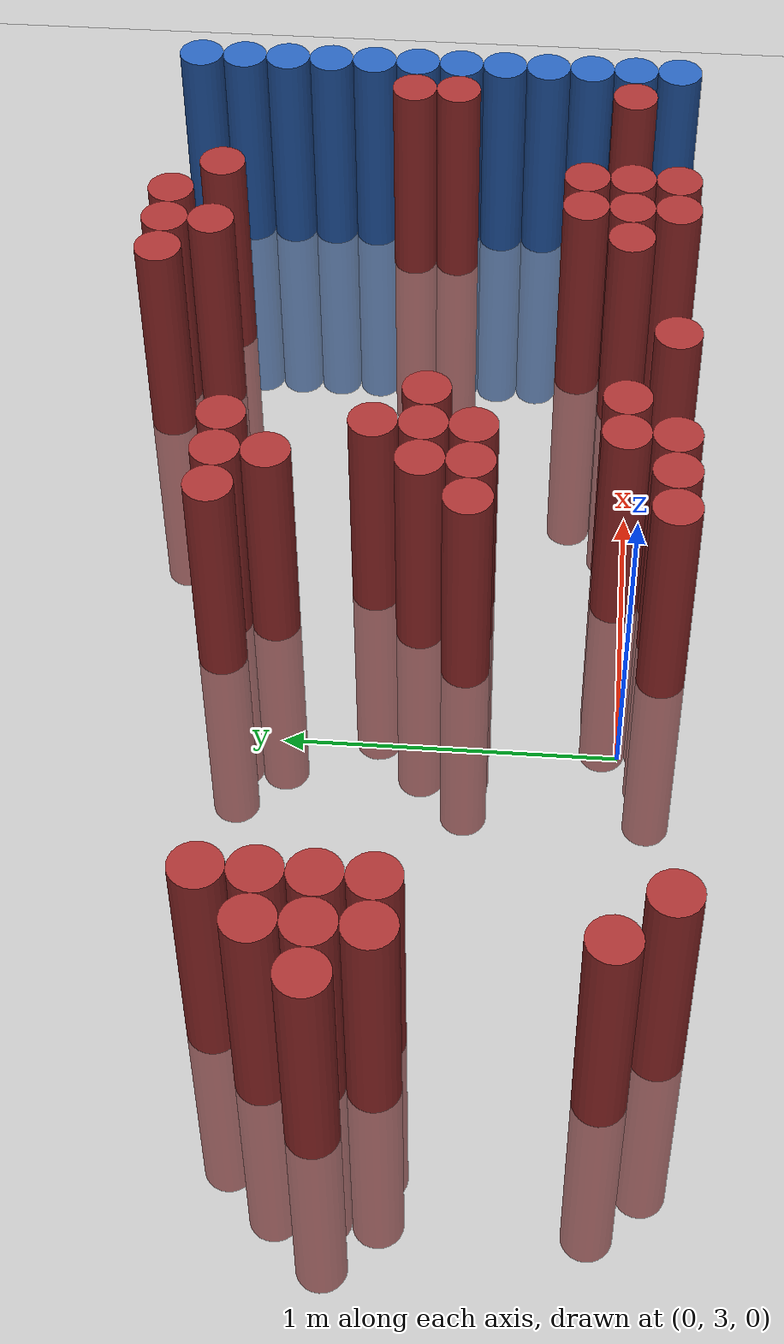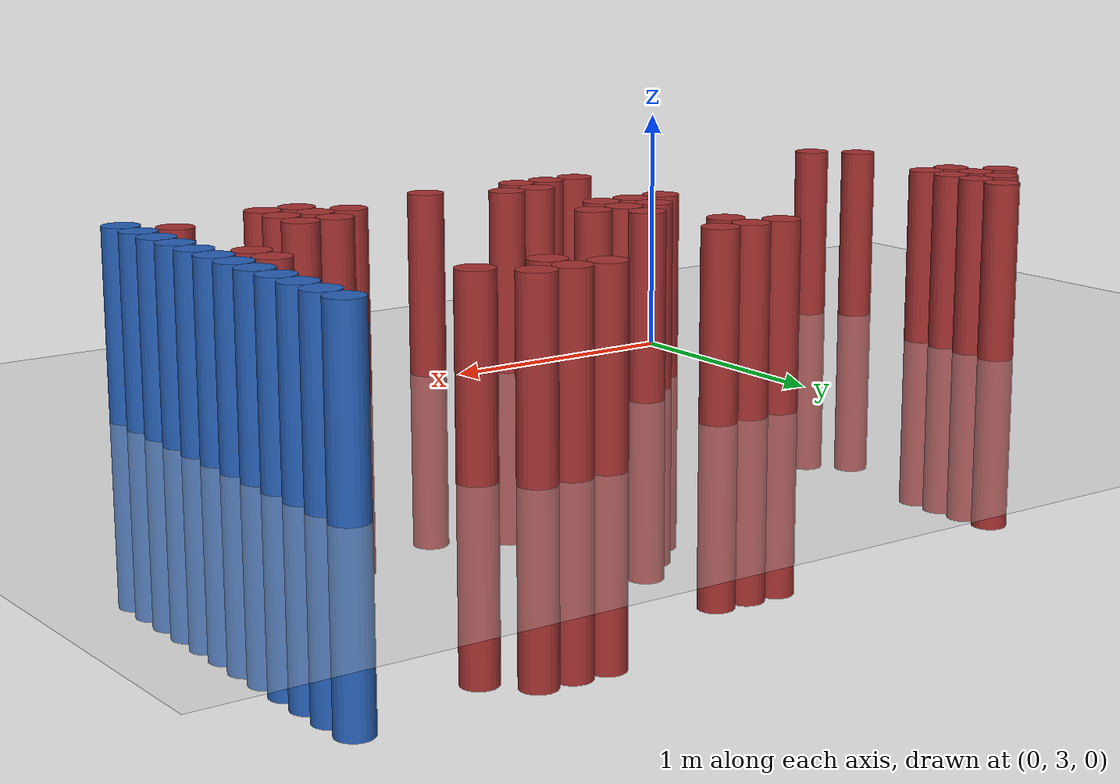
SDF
<sdf version="1.6">
 <world name="default">
  <model name="ground_plane">
   <static>1</static>
   <link name="link">
    <collision name="collision">
     <geometry><plane><normal>0 0 1</normal><size>100 100</size></plane></geometry>
     <surface><friction><ode><mu>100</mu><mu2>50</mu2></ode></friction></surface>
    </collision>
    <visual name="visual">
     <cast_shadows>0</cast_shadows>
     <geometry><plane><normal>0 0 1</normal><size>100 100</size></plane></geometry>
     <material>
      <script><uri>file://media/materials/scripts/gazebo.material</uri><name>Gazebo/Grey</name></script>
     </material>
    </visual>
   </link>
  </model>
  <model name="unit_cylinder_153">
   <static>1</static>
   <pose>-1.325000 3.775000 0.000000 0.000000 0.000000 0.000000</pose>
   <link name="link">
    <inertial>
     <mass>1</mass>
     <inertia><ixx>0.145833</ixx><ixy>0</ixy><ixz>0</ixz><iyy>0.145833</iyy><iyz>0</iyz><izz>0.125</izz></inertia>
    </inertial>
    <collision name="collision">
     <geometry><cylinder><radius>0.075000</radius><length>1.5</length></cylinder></geometry>
    </collision>
    <visual name="visual">
     <geometry><cylinder><radius>0.075000</radius><length>1.5</length></cylinder></geometry>
     <material>
      <ambient>0.648000 0.192000 0.192000 1</ambient>
      <diffuse>0.648000 0.192000 0.192000 1</diffuse>
     </material>
     <material>
      <script><name>Gazebo/Grey</name><uri>file://media/materials/scripts/gazebo.material</uri></script>
     </material>
    </visual>
   </link>
  </model>
  <model name="unit_cylinder_155">
   <static>1</static>
   <pose>-1.175000 3.025000 0.000000 0.000000 0.000000 0.000000</pose>
   <link name="link">
    <inertial>
     <mass>1</mass>
     <inertia><ixx>0.145833</ixx><ixy>0</ixy><ixz>0</ixz><iyy>0.145833</iyy><iyz>0</iyz><izz>0.125</izz></inertia>
    </inertial>
    <collision name="collision">
     <geometry><cylinder><radius>0.075000</radius><length>1.5</length></cylinder></geometry>
    </collision>
    <visual name="visual">
     <geometry><cylinder><radius>0.075000</radius><length>1.5</length></cylinder></geometry>
     <material>
      <ambient>0.648000 0.192000 0.192000 1</ambient>
      <diffuse>0.648000 0.192000 0.192000 1</diffuse>
     </material>
     <material>
      <script><name>Gazebo/Grey</name><uri>file://media/materials/scripts/gazebo.material</uri></script>
     </material>
    </visual>
   </link>
  </model>
  <model name="unit_cylinder_156">
   <static>1</static>
   <pose>-1.175000 3.625000 0.000000 0.000000 0.000000 0.000000</pose>
   <link name="link">
    <inertial>
     <mass>1</mass>
     <inertia><ixx>0.145833</ixx><ixy>0</ixy><ixz>0</ixz><iyy>0.145833</iyy><iyz>0</iyz><izz>0.125</izz></inertia>
    </inertial>
    <collision name="collision">
     <geometry><cylinder><radius>0.075000</radius><length>1.5</length></cylinder></geometry>
    </collision>
    <visual name="visual">
     <geometry><cylinder><radius>0.075000</radius><length>1.5</length></cylinder></geometry>
     <material>
      <ambient>0.648000 0.192000 0.192000 1</ambient>
      <diffuse>0.648000 0.192000 0.192000 1</diffuse>
     </material>
     <material>
      <script><name>Gazebo/Grey</name><uri>file://media/materials/scripts/gazebo.material</uri></script>
     </material>
    </visual>
   </link>
  </model>
  <model name="unit_cylinder_157">
   <static>1</static>
   <pose>-1.175000 3.775000 0.000000 0.000000 0.000000 0.000000</pose>
   <link name="link">
    <inertial>
     <mass>1</mass>
     <inertia><ixx>0.145833</ixx><ixy>0</ixy><ixz>0</ixz><iyy>0.145833</iyy><iyz>0</iyz><izz>0.125</izz></inertia>
    </inertial>
    <collision name="collision">
     <geometry><cylinder><radius>0.075000</radius><length>1.5</length></cylinder></geometry>
    </collision>
    <visual name="visual">
     <geometry><cylinder><radius>0.075000</radius><length>1.5</length></cylinder></geometry>
     <material>
      <ambient>0.648000 0.192000 0.192000 1</ambient>
      <diffuse>0.648000 0.192000 0.192000 1</diffuse>
     </material>
     <material>
      <script><name>Gazebo/Grey</name><uri>file://media/materials/scripts/gazebo.material</uri></script>
     </material>
    </visual>
   </link>
  </model>
  <model name="unit_cylinder_158">
   <static>1</static>
   <pose>-1.175000 3.925000 0.000000 0.000000 0.000000 0.000000</pose>
   <link name="link">
    <inertial>
     <mass>1</mass>
     <inertia><ixx>0.145833</ixx><ixy>0</ixy><ixz>0</ixz><iyy>0.145833</iyy><iyz>0</iyz><izz>0.125</izz></inertia>
    </inertial>
    <collision name="collision">
     <geometry><cylinder><radius>0.075000</radius><length>1.5</length></cylinder></geometry>
    </collision>
    <visual name="visual">
     <geometry><cylinder><radius>0.075000</radius><length>1.5</length></cylinder></geometry>
     <material>
      <ambient>0.648000 0.192000 0.192000 1</ambient>
      <diffuse>0.648000 0.192000 0.192000 1</diffuse>
     </material>
     <material>
      <script><name>Gazebo/Grey</name><uri>file://media/materials/scripts/gazebo.material</uri></script>
     </material>
    </visual>
   </link>
  </model>
  <model name="unit_cylinder_159">
   <static>1</static>
   <pose>-1.025000 2.875000 0.000000 0.000000 0.000000 0.000000</pose>
   <link name="link">
    <inertial>
     <mass>1</mass>
     <inertia><ixx>0.145833</ixx><ixy>0</ixy><ixz>0</ixz><iyy>0.145833</iyy><iyz>0</iyz><izz>0.125</izz></inertia>
    </inertial>
    <collision name="collision">
     <geometry><cylinder><radius>0.075000</radius><length>1.5</length></cylinder></geometry>
    </collision>
    <visual name="visual">
     <geometry><cylinder><radius>0.075000</radius><length>1.5</length></cylinder></geometry>
     <material>
      <ambient>0.648000 0.192000 0.192000 1</ambient>
      <diffuse>0.648000 0.192000 0.192000 1</diffuse>
     </material>
     <material>
      <script><name>Gazebo/Grey</name><uri>file://media/materials/scripts/gazebo.material</uri></script>
     </material>
    </visual>
   </link>
  </model>
  <model name="unit_cylinder_160">
   <static>1</static>
   <pose>-1.025000 3.625000 0.000000 0.000000 0.000000 0.000000</pose>
   <link name="link">
    <inertial>
     <mass>1</mass>
     <inertia><ixx>0.145833</ixx><ixy>0</ixy><ixz>0</ixz><iyy>0.145833</iyy><iyz>0</iyz><izz>0.125</izz></inertia>
    </inertial>
    <collision name="collision">
     <geometry><cylinder><radius>0.075000</radius><length>1.5</length></cylinder></geometry>
    </collision>
    <visual name="visual">
     <geometry><cylinder><radius>0.075000</radius><length>1.5</length></cylinder></geometry>
     <material>
      <ambient>0.648000 0.192000 0.192000 1</ambient>
      <diffuse>0.648000 0.192000 0.192000 1</diffuse>
     </material>
     <material>
      <script><name>Gazebo/Grey</name><uri>file://media/materials/scripts/gazebo.material</uri></script>
     </material>
    </visual>
   </link>
  </model>
  <model name="unit_cylinder_161">
   <static>1</static>
   <pose>-1.025000 3.775000 0.000000 0.000000 0.000000 0.000000</pose>
   <link name="link">
    <inertial>
     <mass>1</mass>
     <inertia><ixx>0.145833</ixx><ixy>0</ixy><ixz>0</ixz><iyy>0.145833</iyy><iyz>0</iyz><izz>0.125</izz></inertia>
    </inertial>
    <collision name="collision">
     <geometry><cylinder><radius>0.075000</radius><length>1.5</length></cylinder></geometry>
    </collision>
    <visual name="visual">
     <geometry><cylinder><radius>0.075000</radius><length>1.5</length></cylinder></geometry>
     <material>
      <ambient>0.648000 0.192000 0.192000 1</ambient>
      <diffuse>0.648000 0.192000 0.192000 1</diffuse>
     </material>
     <material>
      <script><name>Gazebo/Grey</name><uri>file://media/materials/scripts/gazebo.material</uri></script>
     </material>
    </visual>
   </link>
  </model>
  <model name="unit_cylinder_162">
   <static>1</static>
   <pose>-1.025000 3.925000 0.000000 0.000000 0.000000 0.000000</pose>
   <link name="link">
    <inertial>
     <mass>1</mass>
     <inertia><ixx>0.145833</ixx><ixy>0</ixy><ixz>0</ixz><iyy>0.145833</iyy><iyz>0</iyz><izz>0.125</izz></inertia>
    </inertial>
    <collision name="collision">
     <geometry><cylinder><radius>0.075000</radius><length>1.5</length></cylinder></geometry>
    </collision>
    <visual name="visual">
     <geometry><cylinder><radius>0.075000</radius><length>1.5</length></cylinder></geometry>
     <material>
      <ambient>0.648000 0.192000 0.192000 1</ambient>
      <diffuse>0.648000 0.192000 0.192000 1</diffuse>
     </material>
     <material>
      <script><name>Gazebo/Grey</name><uri>file://media/materials/scripts/gazebo.material</uri></script>
     </material>
    </visual>
   </link>
  </model>
  <model name="unit_cylinder_163">
   <static>1</static>
   <pose>-1.025000 4.075000 0.000000 0.000000 0.000000 0.000000</pose>
   <link name="link">
    <inertial>
     <mass>1</mass>
     <inertia><ixx>0.145833</ixx><ixy>0</ixy><ixz>0</ixz><iyy>0.145833</iyy><iyz>0</iyz><izz>0.125</izz></inertia>
    </inertial>
    <collision name="collision">
     <geometry><cylinder><radius>0.075000</radius><length>1.5</length></cylinder></geometry>
    </collision>
    <visual name="visual">
     <geometry><cylinder><radius>0.075000</radius><length>1.5</length></cylinder></geometry>
     <material>
      <ambient>0.648000 0.192000 0.192000 1</ambient>
      <diffuse>0.648000 0.192000 0.192000 1</diffuse>
     </material>
     <material>
      <script><name>Gazebo/Grey</name><uri>file://media/materials/scripts/gazebo.material</uri></script>
     </material>
    </visual>
   </link>
  </model>
  <model name="unit_cylinder_182">
   <static>1</static>
   <pose>0.325000 2.875000 0.000000 0.000000 0.000000 0.000000</pose>
   <link name="link">
    <inertial>
     <mass>1</mass>
     <inertia><ixx>0.145833</ixx><ixy>0</ixy><ixz>0</ixz><iyy>0.145833</iyy><iyz>0</iyz><izz>0.125</izz></inertia>
    </inertial>
    <collision name="collision">
     <geometry><cylinder><radius>0.075000</radius><length>1.5</length></cylinder></geometry>
    </collision>
    <visual name="visual">
     <geometry><cylinder><radius>0.075000</radius><length>1.5</length></cylinder></geometry>
     <material>
      <ambient>0.648000 0.192000 0.192000 1</ambient>
      <diffuse>0.648000 0.192000 0.192000 1</diffuse>
     </material>
     <material>
      <script><name>Gazebo/Grey</name><uri>file://media/materials/scripts/gazebo.material</uri></script>
     </material>
    </visual>
   </link>
  </model>
  <model name="unit_cylinder_183">
   <static>1</static>
   <pose>0.325000 3.475000 0.000000 0.000000 0.000000 0.000000</pose>
   <link name="link">
    <inertial>
     <mass>1</mass>
     <inertia><ixx>0.145833</ixx><ixy>0</ixy><ixz>0</ixz><iyy>0.145833</iyy><iyz>0</iyz><izz>0.125</izz></inertia>
    </inertial>
    <collision name="collision">
     <geometry><cylinder><radius>0.075000</radius><length>1.5</length></cylinder></geometry>
    </collision>
    <visual name="visual">
     <geometry><cylinder><radius>0.075000</radius><length>1.5</length></cylinder></geometry>
     <material>
      <ambient>0.648000 0.192000 0.192000 1</ambient>
      <diffuse>0.648000 0.192000 0.192000 1</diffuse>
     </material>
     <material>
      <script><name>Gazebo/Grey</name><uri>file://media/materials/scripts/gazebo.material</uri></script>
     </material>
    </visual>
   </link>
  </model>
  <model name="unit_cylinder_184">
   <static>1</static>
   <pose>0.325000 4.225000 0.000000 0.000000 0.000000 0.000000</pose>
   <link name="link">
    <inertial>
     <mass>1</mass>
     <inertia><ixx>0.145833</ixx><ixy>0</ixy><ixz>0</ixz><iyy>0.145833</iyy><iyz>0</iyz><izz>0.125</izz></inertia>
    </inertial>
    <collision name="collision">
     <geometry><cylinder><radius>0.075000</radius><length>1.5</length></cylinder></geometry>
    </collision>
    <visual name="visual">
     <geometry><cylinder><radius>0.075000</radius><length>1.5</length></cylinder></geometry>
     <material>
      <ambient>0.648000 0.192000 0.192000 1</ambient>
      <diffuse>0.648000 0.192000 0.192000 1</diffuse>
     </material>
     <material>
      <script><name>Gazebo/Grey</name><uri>file://media/materials/scripts/gazebo.material</uri></script>
     </material>
    </visual>
   </link>
  </model>
  <model name="unit_cylinder_185">
   <static>1</static>
   <pose>0.475000 2.875000 0.000000 0.000000 0.000000 0.000000</pose>
   <link name="link">
    <inertial>
     <mass>1</mass>
     <inertia><ixx>0.145833</ixx><ixy>0</ixy><ixz>0</ixz><iyy>0.145833</iyy><iyz>0</iyz><izz>0.125</izz></inertia>
    </inertial>
    <collision name="collision">
     <geometry><cylinder><radius>0.075000</radius><length>1.5</length></cylinder></geometry>
    </collision>
    <visual name="visual">
     <geometry><cylinder><radius>0.075000</radius><length>1.5</length></cylinder></geometry>
     <material>
      <ambient>0.648000 0.192000 0.192000 1</ambient>
      <diffuse>0.648000 0.192000 0.192000 1</diffuse>
     </material>
     <material>
      <script><name>Gazebo/Grey</name><uri>file://media/materials/scripts/gazebo.material</uri></script>
     </material>
    </visual>
   </link>
  </model>
  <model name="unit_cylinder_186">
   <static>1</static>
   <pose>0.475000 3.475000 0.000000 0.000000 0.000000 0.000000</pose>
   <link name="link">
    <inertial>
     <mass>1</mass>
     <inertia><ixx>0.145833</ixx><ixy>0</ixy><ixz>0</ixz><iyy>0.145833</iyy><iyz>0</iyz><izz>0.125</izz></inertia>
    </inertial>
    <collision name="collision">
     <geometry><cylinder><radius>0.075000</radius><length>1.5</length></cylinder></geometry>
    </collision>
    <visual name="visual">
     <geometry><cylinder><radius>0.075000</radius><length>1.5</length></cylinder></geometry>
     <material>
      <ambient>0.648000 0.192000 0.192000 1</ambient>
      <diffuse>0.648000 0.192000 0.192000 1</diffuse>
     </material>
     <material>
      <script><name>Gazebo/Grey</name><uri>file://media/materials/scripts/gazebo.material</uri></script>
     </material>
    </visual>
   </link>
  </model>
  <model name="unit_cylinder_187">
   <static>1</static>
   <pose>0.475000 3.625000 0.000000 0.000000 0.000000 0.000000</pose>
   <link name="link">
    <inertial>
     <mass>1</mass>
     <inertia><ixx>0.145833</ixx><ixy>0</ixy><ixz>0</ixz><iyy>0.145833</iyy><iyz>0</iyz><izz>0.125</izz></inertia>
    </inertial>
    <collision name="collision">
     <geometry><cylinder><radius>0.075000</radius><length>1.5</length></cylinder></geometry>
    </collision>
    <visual name="visual">
     <geometry><cylinder><radius>0.075000</radius><length>1.5</length></cylinder></geometry>
     <material>
      <ambient>0.648000 0.192000 0.192000 1</ambient>
      <diffuse>0.648000 0.192000 0.192000 1</diffuse>
     </material>
     <material>
      <script><name>Gazebo/Grey</name><uri>file://media/materials/scripts/gazebo.material</uri></script>
     </material>
    </visual>
   </link>
  </model>
  <model name="unit_cylinder_188">
   <static>1</static>
   <pose>0.475000 4.075000 0.000000 0.000000 0.000000 0.000000</pose>
   <link name="link">
    <inertial>
     <mass>1</mass>
     <inertia><ixx>0.145833</ixx><ixy>0</ixy><ixz>0</ixz><iyy>0.145833</iyy><iyz>0</iyz><izz>0.125</izz></inertia>
    </inertial>
    <collision name="collision">
     <geometry><cylinder><radius>0.075000</radius><length>1.5</length></cylinder></geometry>
    </collision>
    <visual name="visual">
     <geometry><cylinder><radius>0.075000</radius><length>1.5</length></cylinder></geometry>
     <material>
      <ambient>0.648000 0.192000 0.192000 1</ambient>
      <diffuse>0.648000 0.192000 0.192000 1</diffuse>
     </material>
     <material>
      <script><name>Gazebo/Grey</name><uri>file://media/materials/scripts/gazebo.material</uri></script>
     </material>
    </visual>
   </link>
  </model>
  <model name="unit_cylinder_189">
   <static>1</static>
   <pose>0.475000 4.225000 0.000000 0.000000 0.000000 0.000000</pose>
   <link name="link">
    <inertial>
     <mass>1</mass>
     <inertia><ixx>0.145833</ixx><ixy>0</ixy><ixz>0</ixz><iyy>0.145833</iyy><iyz>0</iyz><izz>0.125</izz></inertia>
    </inertial>
    <collision name="collision">
     <geometry><cylinder><radius>0.075000</radius><length>1.5</length></cylinder></geometry>
    </collision>
    <visual name="visual">
     <geometry><cylinder><radius>0.075000</radius><length>1.5</length></cylinder></geometry>
     <material>
      <ambient>0.648000 0.192000 0.192000 1</ambient>
      <diffuse>0.648000 0.192000 0.192000 1</diffuse>
     </material>
     <material>
      <script><name>Gazebo/Grey</name><uri>file://media/materials/scripts/gazebo.material</uri></script>
     </material>
    </visual>
   </link>
  </model>
  <model name="unit_cylinder_190">
   <static>1</static>
   <pose>0.625000 2.875000 0.000000 0.000000 0.000000 0.000000</pose>
   <link name="link">
    <inertial>
     <mass>1</mass>
     <inertia><ixx>0.145833</ixx><ixy>0</ixy><ixz>0</ixz><iyy>0.145833</iyy><iyz>0</iyz><izz>0.125</izz></inertia>
    </inertial>
    <collision name="collision">
     <geometry><cylinder><radius>0.075000</radius><length>1.5</length></cylinder></geometry>
    </collision>
    <visual name="visual">
     <geometry><cylinder><radius>0.075000</radius><length>1.5</length></cylinder></geometry>
     <material>
      <ambient>0.648000 0.192000 0.192000 1</ambient>
      <diffuse>0.648000 0.192000 0.192000 1</diffuse>
     </material>
     <material>
      <script><name>Gazebo/Grey</name><uri>file://media/materials/scripts/gazebo.material</uri></script>
     </material>
    </visual>
   </link>
  </model>
  <model name="unit_cylinder_191">
   <static>1</static>
   <pose>0.625000 3.025000 0.000000 0.000000 0.000000 0.000000</pose>
   <link name="link">
    <inertial>
     <mass>1</mass>
     <inertia><ixx>0.145833</ixx><ixy>0</ixy><ixz>0</ixz><iyy>0.145833</iyy><iyz>0</iyz><izz>0.125</izz></inertia>
    </inertial>
    <collision name="collision">
     <geometry><cylinder><radius>0.075000</radius><length>1.5</length></cylinder></geometry>
    </collision>
    <visual name="visual">
     <geometry><cylinder><radius>0.075000</radius><length>1.5</length></cylinder></geometry>
     <material>
      <ambient>0.648000 0.192000 0.192000 1</ambient>
      <diffuse>0.648000 0.192000 0.192000 1</diffuse>
     </material>
     <material>
      <script><name>Gazebo/Grey</name><uri>file://media/materials/scripts/gazebo.material</uri></script>
     </material>
    </visual>
   </link>
  </model>
  <model name="unit_cylinder_192">
   <static>1</static>
   <pose>0.625000 3.475000 0.000000 0.000000 0.000000 0.000000</pose>
   <link name="link">
    <inertial>
     <mass>1</mass>
     <inertia><ixx>0.145833</ixx><ixy>0</ixy><ixz>0</ixz><iyy>0.145833</iyy><iyz>0</iyz><izz>0.125</izz></inertia>
    </inertial>
    <collision name="collision">
     <geometry><cylinder><radius>0.075000</radius><length>1.5</length></cylinder></geometry>
    </collision>
    <visual name="visual">
     <geometry><cylinder><radius>0.075000</radius><length>1.5</length></cylinder></geometry>
     <material>
      <ambient>0.648000 0.192000 0.192000 1</ambient>
      <diffuse>0.648000 0.192000 0.192000 1</diffuse>
     </material>
     <material>
      <script><name>Gazebo/Grey</name><uri>file://media/materials/scripts/gazebo.material</uri></script>
     </material>
    </visual>
   </link>
  </model>
  <model name="unit_cylinder_193">
   <static>1</static>
   <pose>0.625000 3.625000 0.000000 0.000000 0.000000 0.000000</pose>
   <link name="link">
    <inertial>
     <mass>1</mass>
     <inertia><ixx>0.145833</ixx><ixy>0</ixy><ixz>0</ixz><iyy>0.145833</iyy><iyz>0</iyz><izz>0.125</izz></inertia>
    </inertial>
    <collision name="collision">
     <geometry><cylinder><radius>0.075000</radius><length>1.5</length></cylinder></geometry>
    </collision>
    <visual name="visual">
     <geometry><cylinder><radius>0.075000</radius><length>1.5</length></cylinder></geometry>
     <material>
      <ambient>0.648000 0.192000 0.192000 1</ambient>
      <diffuse>0.648000 0.192000 0.192000 1</diffuse>
     </material>
     <material>
      <script><name>Gazebo/Grey</name><uri>file://media/materials/scripts/gazebo.material</uri></script>
     </material>
    </visual>
   </link>
  </model>
  <model name="unit_cylinder_194">
   <static>1</static>
   <pose>0.625000 3.775000 0.000000 0.000000 0.000000 0.000000</pose>
   <link name="link">
    <inertial>
     <mass>1</mass>
     <inertia><ixx>0.145833</ixx><ixy>0</ixy><ixz>0</ixz><iyy>0.145833</iyy><iyz>0</iyz><izz>0.125</izz></inertia>
    </inertial>
    <collision name="collision">
     <geometry><cylinder><radius>0.075000</radius><length>1.5</length></cylinder></geometry>
    </collision>
    <visual name="visual">
     <geometry><cylinder><radius>0.075000</radius><length>1.5</length></cylinder></geometry>
     <material>
      <ambient>0.648000 0.192000 0.192000 1</ambient>
      <diffuse>0.648000 0.192000 0.192000 1</diffuse>
     </material>
     <material>
      <script><name>Gazebo/Grey</name><uri>file://media/materials/scripts/gazebo.material</uri></script>
     </material>
    </visual>
   </link>
  </model>
  <model name="unit_cylinder_195">
   <static>1</static>
   <pose>0.625000 4.225000 0.000000 0.000000 0.000000 0.000000</pose>
   <link name="link">
    <inertial>
     <mass>1</mass>
     <inertia><ixx>0.145833</ixx><ixy>0</ixy><ixz>0</ixz><iyy>0.145833</iyy><iyz>0</iyz><izz>0.125</izz></inertia>
    </inertial>
    <collision name="collision">
     <geometry><cylinder><radius>0.075000</radius><length>1.5</length></cylinder></geometry>
    </collision>
    <visual name="visual">
     <geometry><cylinder><radius>0.075000</radius><length>1.5</length></cylinder></geometry>
     <material>
      <ambient>0.648000 0.192000 0.192000 1</ambient>
      <diffuse>0.648000 0.192000 0.192000 1</diffuse>
     </material>
     <material>
      <script><name>Gazebo/Grey</name><uri>file://media/materials/scripts/gazebo.material</uri></script>
     </material>
    </visual>
   </link>
  </model>
  <model name="unit_cylinder_196">
   <static>1</static>
   <pose>0.775000 3.025000 0.000000 0.000000 0.000000 0.000000</pose>
   <link name="link">
    <inertial>
     <mass>1</mass>
     <inertia><ixx>0.145833</ixx><ixy>0</ixy><ixz>0</ixz><iyy>0.145833</iyy><iyz>0</iyz><izz>0.125</izz></inertia>
    </inertial>
    <collision name="collision">
     <geometry><cylinder><radius>0.075000</radius><length>1.5</length></cylinder></geometry>
    </collision>
    <visual name="visual">
     <geometry><cylinder><radius>0.075000</radius><length>1.5</length></cylinder></geometry>
     <material>
      <ambient>0.648000 0.192000 0.192000 1</ambient>
      <diffuse>0.648000 0.192000 0.192000 1</diffuse>
     </material>
     <material>
      <script><name>Gazebo/Grey</name><uri>file://media/materials/scripts/gazebo.material</uri></script>
     </material>
    </visual>
   </link>
  </model>
  <model name="unit_cylinder_197">
   <static>1</static>
   <pose>0.775000 3.625000 0.000000 0.000000 0.000000 0.000000</pose>
   <link name="link">
    <inertial>
     <mass>1</mass>
     <inertia><ixx>0.145833</ixx><ixy>0</ixy><ixz>0</ixz><iyy>0.145833</iyy><iyz>0</iyz><izz>0.125</izz></inertia>
    </inertial>
    <collision name="collision">
     <geometry><cylinder><radius>0.075000</radius><length>1.5</length></cylinder></geometry>
    </collision>
    <visual name="visual">
     <geometry><cylinder><radius>0.075000</radius><length>1.5</length></cylinder></geometry>
     <material>
      <ambient>0.648000 0.192000 0.192000 1</ambient>
      <diffuse>0.648000 0.192000 0.192000 1</diffuse>
     </material>
     <material>
      <script><name>Gazebo/Grey</name><uri>file://media/materials/scripts/gazebo.material</uri></script>
     </material>
    </visual>
   </link>
  </model>
  <model name="unit_cylinder_203">
   <static>1</static>
   <pose>1.075000 2.875000 0.000000 0.000000 0.000000 0.000000</pose>
   <link name="link">
    <inertial>
     <mass>1</mass>
     <inertia><ixx>0.145833</ixx><ixy>0</ixy><ixz>0</ixz><iyy>0.145833</iyy><iyz>0</iyz><izz>0.125</izz></inertia>
    </inertial>
    <collision name="collision">
     <geometry><cylinder><radius>0.075000</radius><length>1.5</length></cylinder></geometry>
    </collision>
    <visual name="visual">
     <geometry><cylinder><radius>0.075000</radius><length>1.5</length></cylinder></geometry>
     <material>
      <ambient>0.648000 0.192000 0.192000 1</ambient>
      <diffuse>0.648000 0.192000 0.192000 1</diffuse>
     </material>
     <material>
      <script><name>Gazebo/Grey</name><uri>file://media/materials/scripts/gazebo.material</uri></script>
     </material>
    </visual>
   </link>
  </model>
  <model name="unit_cylinder_210">
   <static>1</static>
   <pose>1.375000 4.525000 0.000000 0.000000 0.000000 0.000000</pose>
   <link name="link">
    <inertial>
     <mass>1</mass>
     <inertia><ixx>0.145833</ixx><ixy>0</ixy><ixz>0</ixz><iyy>0.145833</iyy><iyz>0</iyz><izz>0.125</izz></inertia>
    </inertial>
    <collision name="collision">
     <geometry><cylinder><radius>0.075000</radius><length>1.5</length></cylinder></geometry>
    </collision>
    <visual name="visual">
     <geometry><cylinder><radius>0.075000</radius><length>1.5</length></cylinder></geometry>
     <material>
      <ambient>0.648000 0.192000 0.192000 1</ambient>
      <diffuse>0.648000 0.192000 0.192000 1</diffuse>
     </material>
     <material>
      <script><name>Gazebo/Grey</name><uri>file://media/materials/scripts/gazebo.material</uri></script>
     </material>
    </visual>
   </link>
  </model>
  <model name="unit_cylinder_216">
   <static>1</static>
   <pose>1.525000 3.025000 0.000000 0.000000 0.000000 0.000000</pose>
   <link name="link">
    <inertial>
     <mass>1</mass>
     <inertia><ixx>0.145833</ixx><ixy>0</ixy><ixz>0</ixz><iyy>0.145833</iyy><iyz>0</iyz><izz>0.125</izz></inertia>
    </inertial>
    <collision name="collision">
     <geometry><cylinder><radius>0.075000</radius><length>1.5</length></cylinder></geometry>
    </collision>
    <visual name="visual">
     <geometry><cylinder><radius>0.075000</radius><length>1.5</length></cylinder></geometry>
     <material>
      <ambient>0.648000 0.192000 0.192000 1</ambient>
      <diffuse>0.648000 0.192000 0.192000 1</diffuse>
     </material>
     <material>
      <script><name>Gazebo/Grey</name><uri>file://media/materials/scripts/gazebo.material</uri></script>
     </material>
    </visual>
   </link>
  </model>
  <model name="unit_cylinder_217">
   <static>1</static>
   <pose>1.525000 4.375000 0.000000 0.000000 0.000000 0.000000</pose>
   <link name="link">
    <inertial>
     <mass>1</mass>
     <inertia><ixx>0.145833</ixx><ixy>0</ixy><ixz>0</ixz><iyy>0.145833</iyy><iyz>0</iyz><izz>0.125</izz></inertia>
    </inertial>
    <collision name="collision">
     <geometry><cylinder><radius>0.075000</radius><length>1.5</length></cylinder></geometry>
    </collision>
    <visual name="visual">
     <geometry><cylinder><radius>0.075000</radius><length>1.5</length></cylinder></geometry>
     <material>
      <ambient>0.648000 0.192000 0.192000 1</ambient>
      <diffuse>0.648000 0.192000 0.192000 1</diffuse>
     </material>
     <material>
      <script><name>Gazebo/Grey</name><uri>file://media/materials/scripts/gazebo.material</uri></script>
     </material>
    </visual>
   </link>
  </model>
  <model name="unit_cylinder_218">
   <static>1</static>
   <pose>1.525000 4.525000 0.000000 0.000000 0.000000 0.000000</pose>
   <link name="link">
    <inertial>
     <mass>1</mass>
     <inertia><ixx>0.145833</ixx><ixy>0</ixy><ixz>0</ixz><iyy>0.145833</iyy><iyz>0</iyz><izz>0.125</izz></inertia>
    </inertial>
    <collision name="collision">
     <geometry><cylinder><radius>0.075000</radius><length>1.5</length></cylinder></geometry>
    </collision>
    <visual name="visual">
     <geometry><cylinder><radius>0.075000</radius><length>1.5</length></cylinder></geometry>
     <material>
      <ambient>0.648000 0.192000 0.192000 1</ambient>
      <diffuse>0.648000 0.192000 0.192000 1</diffuse>
     </material>
     <material>
      <script><name>Gazebo/Grey</name><uri>file://media/materials/scripts/gazebo.material</uri></script>
     </material>
    </visual>
   </link>
  </model>
  <model name="unit_cylinder_225">
   <static>1</static>
   <pose>1.675000 2.875000 0.000000 0.000000 0.000000 0.000000</pose>
   <link name="link">
    <inertial>
     <mass>1</mass>
     <inertia><ixx>0.145833</ixx><ixy>0</ixy><ixz>0</ixz><iyy>0.145833</iyy><iyz>0</iyz><izz>0.125</izz></inertia>
    </inertial>
    <collision name="collision">
     <geometry><cylinder><radius>0.075000</radius><length>1.5</length></cylinder></geometry>
    </collision>
    <visual name="visual">
     <geometry><cylinder><radius>0.075000</radius><length>1.5</length></cylinder></geometry>
     <material>
      <ambient>0.648000 0.192000 0.192000 1</ambient>
      <diffuse>0.648000 0.192000 0.192000 1</diffuse>
     </material>
     <material>
      <script><name>Gazebo/Grey</name><uri>file://media/materials/scripts/gazebo.material</uri></script>
     </material>
    </visual>
   </link>
  </model>
  <model name="unit_cylinder_226">
   <static>1</static>
   <pose>1.675000 3.025000 0.000000 0.000000 0.000000 0.000000</pose>
   <link name="link">
    <inertial>
     <mass>1</mass>
     <inertia><ixx>0.145833</ixx><ixy>0</ixy><ixz>0</ixz><iyy>0.145833</iyy><iyz>0</iyz><izz>0.125</izz></inertia>
    </inertial>
    <collision name="collision">
     <geometry><cylinder><radius>0.075000</radius><length>1.5</length></cylinder></geometry>
    </collision>
    <visual name="visual">
     <geometry><cylinder><radius>0.075000</radius><length>1.5</length></cylinder></geometry>
     <material>
      <ambient>0.648000 0.192000 0.192000 1</ambient>
      <diffuse>0.648000 0.192000 0.192000 1</diffuse>
     </material>
     <material>
      <script><name>Gazebo/Grey</name><uri>file://media/materials/scripts/gazebo.material</uri></script>
     </material>
    </visual>
   </link>
  </model>
  <model name="unit_cylinder_227">
   <static>1</static>
   <pose>1.675000 3.175000 0.000000 0.000000 0.000000 0.000000</pose>
   <link name="link">
    <inertial>
     <mass>1</mass>
     <inertia><ixx>0.145833</ixx><ixy>0</ixy><ixz>0</ixz><iyy>0.145833</iyy><iyz>0</iyz><izz>0.125</izz></inertia>
    </inertial>
    <collision name="collision">
     <geometry><cylinder><radius>0.075000</radius><length>1.5</length></cylinder></geometry>
    </collision>
    <visual name="visual">
     <geometry><cylinder><radius>0.075000</radius><length>1.5</length></cylinder></geometry>
     <material>
      <ambient>0.648000 0.192000 0.192000 1</ambient>
      <diffuse>0.648000 0.192000 0.192000 1</diffuse>
     </material>
     <material>
      <script><name>Gazebo/Grey</name><uri>file://media/materials/scripts/gazebo.material</uri></script>
     </material>
    </visual>
   </link>
  </model>
  <model name="unit_cylinder_228">
   <static>1</static>
   <pose>1.675000 4.525000 0.000000 0.000000 0.000000 0.000000</pose>
   <link name="link">
    <inertial>
     <mass>1</mass>
     <inertia><ixx>0.145833</ixx><ixy>0</ixy><ixz>0</ixz><iyy>0.145833</iyy><iyz>0</iyz><izz>0.125</izz></inertia>
    </inertial>
    <collision name="collision">
     <geometry><cylinder><radius>0.075000</radius><length>1.5</length></cylinder></geometry>
    </collision>
    <visual name="visual">
     <geometry><cylinder><radius>0.075000</radius><length>1.5</length></cylinder></geometry>
     <material>
      <ambient>0.648000 0.192000 0.192000 1</ambient>
      <diffuse>0.648000 0.192000 0.192000 1</diffuse>
     </material>
     <material>
      <script><name>Gazebo/Grey</name><uri>file://media/materials/scripts/gazebo.material</uri></script>
     </material>
    </visual>
   </link>
  </model>
  <model name="unit_cylinder_230">
   <static>1</static>
   <pose>1.825000 2.875000 0.000000 0.000000 0.000000 0.000000</pose>
   <link name="link">
    <inertial>
     <mass>1</mass>
     <inertia><ixx>0.145833</ixx><ixy>0</ixy><ixz>0</ixz><iyy>0.145833</iyy><iyz>0</iyz><izz>0.125</izz></inertia>
    </inertial>
    <collision name="collision">
     <geometry><cylinder><radius>0.075000</radius><length>1.5</length></cylinder></geometry>
    </collision>
    <visual name="visual">
     <geometry><cylinder><radius>0.075000</radius><length>1.5</length></cylinder></geometry>
     <material>
      <ambient>0.648000 0.192000 0.192000 1</ambient>
      <diffuse>0.648000 0.192000 0.192000 1</diffuse>
     </material>
     <material>
      <script><name>Gazebo/Grey</name><uri>file://media/materials/scripts/gazebo.material</uri></script>
     </material>
    </visual>
   </link>
  </model>
  <model name="unit_cylinder_231">
   <static>1</static>
   <pose>1.825000 3.025000 0.000000 0.000000 0.000000 0.000000</pose>
   <link name="link">
    <inertial>
     <mass>1</mass>
     <inertia><ixx>0.145833</ixx><ixy>0</ixy><ixz>0</ixz><iyy>0.145833</iyy><iyz>0</iyz><izz>0.125</izz></inertia>
    </inertial>
    <collision name="collision">
     <geometry><cylinder><radius>0.075000</radius><length>1.5</length></cylinder></geometry>
    </collision>
    <visual name="visual">
     <geometry><cylinder><radius>0.075000</radius><length>1.5</length></cylinder></geometry>
     <material>
      <ambient>0.648000 0.192000 0.192000 1</ambient>
      <diffuse>0.648000 0.192000 0.192000 1</diffuse>
     </material>
     <material>
      <script><name>Gazebo/Grey</name><uri>file://media/materials/scripts/gazebo.material</uri></script>
     </material>
    </visual>
   </link>
  </model>
  <model name="unit_cylinder_232">
   <static>1</static>
   <pose>1.825000 3.175000 0.000000 0.000000 0.000000 0.000000</pose>
   <link name="link">
    <inertial>
     <mass>1</mass>
     <inertia><ixx>0.145833</ixx><ixy>0</ixy><ixz>0</ixz><iyy>0.145833</iyy><iyz>0</iyz><izz>0.125</izz></inertia>
    </inertial>
    <collision name="collision">
     <geometry><cylinder><radius>0.075000</radius><length>1.5</length></cylinder></geometry>
    </collision>
    <visual name="visual">
     <geometry><cylinder><radius>0.075000</radius><length>1.5</length></cylinder></geometry>
     <material>
      <ambient>0.648000 0.192000 0.192000 1</ambient>
      <diffuse>0.648000 0.192000 0.192000 1</diffuse>
     </material>
     <material>
      <script><name>Gazebo/Grey</name><uri>file://media/materials/scripts/gazebo.material</uri></script>
     </material>
    </visual>
   </link>
  </model>
  <model name="unit_cylinder_233">
   <static>1</static>
   <pose>1.825000 4.375000 0.000000 0.000000 0.000000 0.000000</pose>
   <link name="link">
    <inertial>
     <mass>1</mass>
     <inertia><ixx>0.145833</ixx><ixy>0</ixy><ixz>0</ixz><iyy>0.145833</iyy><iyz>0</iyz><izz>0.125</izz></inertia>
    </inertial>
    <collision name="collision">
     <geometry><cylinder><radius>0.075000</radius><length>1.5</length></cylinder></geometry>
    </collision>
    <visual name="visual">
     <geometry><cylinder><radius>0.075000</radius><length>1.5</length></cylinder></geometry>
     <material>
      <ambient>0.648000 0.192000 0.192000 1</ambient>
      <diffuse>0.648000 0.192000 0.192000 1</diffuse>
     </material>
     <material>
      <script><name>Gazebo/Grey</name><uri>file://media/materials/scripts/gazebo.material</uri></script>
     </material>
    </visual>
   </link>
  </model>
  <model name="unit_cylinder_235">
   <static>1</static>
   <pose>2.275000 3.025000 0.000000 0.000000 0.000000 0.000000</pose>
   <link name="link">
    <inertial>
     <mass>1</mass>
     <inertia><ixx>0.145833</ixx><ixy>0</ixy><ixz>0</ixz><iyy>0.145833</iyy><iyz>0</iyz><izz>0.125</izz></inertia>
    </inertial>
    <collision name="collision">
     <geometry><cylinder><radius>0.075000</radius><length>1.5</length></cylinder></geometry>
    </collision>
    <visual name="visual">
     <geometry><cylinder><radius>0.075000</radius><length>1.5</length></cylinder></geometry>
     <material>
      <ambient>0.648000 0.192000 0.192000 1</ambient>
      <diffuse>0.648000 0.192000 0.192000 1</diffuse>
     </material>
     <material>
      <script><name>Gazebo/Grey</name><uri>file://media/materials/scripts/gazebo.material</uri></script>
     </material>
    </visual>
   </link>
  </model>
  <model name="unit_cylinder_236">
   <static>1</static>
   <pose>2.275000 3.625000 0.000000 0.000000 0.000000 0.000000</pose>
   <link name="link">
    <inertial>
     <mass>1</mass>
     <inertia><ixx>0.145833</ixx><ixy>0</ixy><ixz>0</ixz><iyy>0.145833</iyy><iyz>0</iyz><izz>0.125</izz></inertia>
    </inertial>
    <collision name="collision">
     <geometry><cylinder><radius>0.075000</radius><length>1.5</length></cylinder></geometry>
    </collision>
    <visual name="visual">
     <geometry><cylinder><radius>0.075000</radius><length>1.5</length></cylinder></geometry>
     <material>
      <ambient>0.648000 0.192000 0.192000 1</ambient>
      <diffuse>0.648000 0.192000 0.192000 1</diffuse>
     </material>
     <material>
      <script><name>Gazebo/Grey</name><uri>file://media/materials/scripts/gazebo.material</uri></script>
     </material>
    </visual>
   </link>
  </model>
  <model name="unit_cylinder_237">
   <static>1</static>
   <pose>2.275000 3.775000 0.000000 0.000000 0.000000 0.000000</pose>
   <link name="link">
    <inertial>
     <mass>1</mass>
     <inertia><ixx>0.145833</ixx><ixy>0</ixy><ixz>0</ixz><iyy>0.145833</iyy><iyz>0</iyz><izz>0.125</izz></inertia>
    </inertial>
    <collision name="collision">
     <geometry><cylinder><radius>0.075000</radius><length>1.5</length></cylinder></geometry>
    </collision>
    <visual name="visual">
     <geometry><cylinder><radius>0.075000</radius><length>1.5</length></cylinder></geometry>
     <material>
      <ambient>0.648000 0.192000 0.192000 1</ambient>
      <diffuse>0.648000 0.192000 0.192000 1</diffuse>
     </material>
     <material>
      <script><name>Gazebo/Grey</name><uri>file://media/materials/scripts/gazebo.material</uri></script>
     </material>
    </visual>
   </link>
  </model>
  <model name="unit_cylinder_256">
   <static>1</static>
   <pose>2.425000 2.875000 0.000000 0.000000 0.000000 0.000000</pose>
   <link name="link">
    <inertial>
     <mass>1</mass>
     <inertia><ixx>0.145833</ixx><ixy>0</ixy><ixz>0</ixz><iyy>0.145833</iyy><iyz>0</iyz><izz>0.125</izz></inertia>
    </inertial>
    <collision name="collision">
     <geometry><cylinder><radius>0.075000</radius><length>1.5</length></cylinder></geometry>
    </collision>
    <visual name="visual">
     <geometry><cylinder><radius>0.075000</radius><length>1.5</length></cylinder></geometry>
     <material>
      <ambient>0.152000 0.379000 0.720000 1</ambient>
      <diffuse>0.152000 0.379000 0.720000 1</diffuse>
     </material>
     <material>
      <script><name>Gazebo/Grey</name><uri>file://media/materials/scripts/gazebo.material</uri></script>
     </material>
    </visual>
   </link>
  </model>
  <model name="unit_cylinder_257">
   <static>1</static>
   <pose>2.425000 3.025000 0.000000 0.000000 0.000000 0.000000</pose>
   <link name="link">
    <inertial>
     <mass>1</mass>
     <inertia><ixx>0.145833</ixx><ixy>0</ixy><ixz>0</ixz><iyy>0.145833</iyy><iyz>0</iyz><izz>0.125</izz></inertia>
    </inertial>
    <collision name="collision">
     <geometry><cylinder><radius>0.075000</radius><length>1.5</length></cylinder></geometry>
    </collision>
    <visual name="visual">
     <geometry><cylinder><radius>0.075000</radius><length>1.5</length></cylinder></geometry>
     <material>
      <ambient>0.152000 0.379000 0.720000 1</ambient>
      <diffuse>0.152000 0.379000 0.720000 1</diffuse>
     </material>
     <material>
      <script><name>Gazebo/Grey</name><uri>file://media/materials/scripts/gazebo.material</uri></script>
     </material>
    </visual>
   </link>
  </model>
  <model name="unit_cylinder_258">
   <static>1</static>
   <pose>2.425000 3.175000 0.000000 0.000000 0.000000 0.000000</pose>
   <link name="link">
    <inertial>
     <mass>1</mass>
     <inertia><ixx>0.145833</ixx><ixy>0</ixy><ixz>0</ixz><iyy>0.145833</iyy><iyz>0</iyz><izz>0.125</izz></inertia>
    </inertial>
    <collision name="collision">
     <geometry><cylinder><radius>0.075000</radius><length>1.5</length></cylinder></geometry>
    </collision>
    <visual name="visual">
     <geometry><cylinder><radius>0.075000</radius><length>1.5</length></cylinder></geometry>
     <material>
      <ambient>0.152000 0.379000 0.720000 1</ambient>
      <diffuse>0.152000 0.379000 0.720000 1</diffuse>
     </material>
     <material>
      <script><name>Gazebo/Grey</name><uri>file://media/materials/scripts/gazebo.material</uri></script>
     </material>
    </visual>
   </link>
  </model>
  <model name="unit_cylinder_259">
   <static>1</static>
   <pose>2.425000 3.325000 0.000000 0.000000 0.000000 0.000000</pose>
   <link name="link">
    <inertial>
     <mass>1</mass>
     <inertia><ixx>0.145833</ixx><ixy>0</ixy><ixz>0</ixz><iyy>0.145833</iyy><iyz>0</iyz><izz>0.125</izz></inertia>
    </inertial>
    <collision name="collision">
     <geometry><cylinder><radius>0.075000</radius><length>1.5</length></cylinder></geometry>
    </collision>
    <visual name="visual">
     <geometry><cylinder><radius>0.075000</radius><length>1.5</length></cylinder></geometry>
     <material>
      <ambient>0.152000 0.379000 0.720000 1</ambient>
      <diffuse>0.152000 0.379000 0.720000 1</diffuse>
     </material>
     <material>
      <script><name>Gazebo/Grey</name><uri>file://media/materials/scripts/gazebo.material</uri></script>
     </material>
    </visual>
   </link>
  </model>
  <model name="unit_cylinder_260">
   <static>1</static>
   <pose>2.425000 3.475000 0.000000 0.000000 0.000000 0.000000</pose>
   <link name="link">
    <inertial>
     <mass>1</mass>
     <inertia><ixx>0.145833</ixx><ixy>0</ixy><ixz>0</ixz><iyy>0.145833</iyy><iyz>0</iyz><izz>0.125</izz></inertia>
    </inertial>
    <collision name="collision">
     <geometry><cylinder><radius>0.075000</radius><length>1.5</length></cylinder></geometry>
    </collision>
    <visual name="visual">
     <geometry><cylinder><radius>0.075000</radius><length>1.5</length></cylinder></geometry>
     <material>
      <ambient>0.152000 0.379000 0.720000 1</ambient>
      <diffuse>0.152000 0.379000 0.720000 1</diffuse>
     </material>
     <material>
      <script><name>Gazebo/Grey</name><uri>file://media/materials/scripts/gazebo.material</uri></script>
     </material>
    </visual>
   </link>
  </model>
  <model name="unit_cylinder_261">
   <static>1</static>
   <pose>2.425000 3.625000 0.000000 0.000000 0.000000 0.000000</pose>
   <link name="link">
    <inertial>
     <mass>1</mass>
     <inertia><ixx>0.145833</ixx><ixy>0</ixy><ixz>0</ixz><iyy>0.145833</iyy><iyz>0</iyz><izz>0.125</izz></inertia>
    </inertial>
    <collision name="collision">
     <geometry><cylinder><radius>0.075000</radius><length>1.5</length></cylinder></geometry>
    </collision>
    <visual name="visual">
     <geometry><cylinder><radius>0.075000</radius><length>1.5</length></cylinder></geometry>
     <material>
      <ambient>0.152000 0.379000 0.720000 1</ambient>
      <diffuse>0.152000 0.379000 0.720000 1</diffuse>
     </material>
     <material>
      <script><name>Gazebo/Grey</name><uri>file://media/materials/scripts/gazebo.material</uri></script>
     </material>
    </visual>
   </link>
  </model>
  <model name="unit_cylinder_262">
   <static>1</static>
   <pose>2.425000 3.775000 0.000000 0.000000 0.000000 0.000000</pose>
   <link name="link">
    <inertial>
     <mass>1</mass>
     <inertia><ixx>0.145833</ixx><ixy>0</ixy><ixz>0</ixz><iyy>0.145833</iyy><iyz>0</iyz><izz>0.125</izz></inertia>
    </inertial>
    <collision name="collision">
     <geometry><cylinder><radius>0.075000</radius><length>1.5</length></cylinder></geometry>
    </collision>
    <visual name="visual">
     <geometry><cylinder><radius>0.075000</radius><length>1.5</length></cylinder></geometry>
     <material>
      <ambient>0.152000 0.379000 0.720000 1</ambient>
      <diffuse>0.152000 0.379000 0.720000 1</diffuse>
     </material>
     <material>
      <script><name>Gazebo/Grey</name><uri>file://media/materials/scripts/gazebo.material</uri></script>
     </material>
    </visual>
   </link>
  </model>
  <model name="unit_cylinder_263">
   <static>1</static>
   <pose>2.425000 3.925000 0.000000 0.000000 0.000000 0.000000</pose>
   <link name="link">
    <inertial>
     <mass>1</mass>
     <inertia><ixx>0.145833</ixx><ixy>0</ixy><ixz>0</ixz><iyy>0.145833</iyy><iyz>0</iyz><izz>0.125</izz></inertia>
    </inertial>
    <collision name="collision">
     <geometry><cylinder><radius>0.075000</radius><length>1.5</length></cylinder></geometry>
    </collision>
    <visual name="visual">
     <geometry><cylinder><radius>0.075000</radius><length>1.5</length></cylinder></geometry>
     <material>
      <ambient>0.152000 0.379000 0.720000 1</ambient>
      <diffuse>0.152000 0.379000 0.720000 1</diffuse>
     </material>
     <material>
      <script><name>Gazebo/Grey</name><uri>file://media/materials/scripts/gazebo.material</uri></script>
     </material>
    </visual>
   </link>
  </model>
  <model name="unit_cylinder_264">
   <static>1</static>
   <pose>2.425000 4.075000 0.000000 0.000000 0.000000 0.000000</pose>
   <link name="link">
    <inertial>
     <mass>1</mass>
     <inertia><ixx>0.145833</ixx><ixy>0</ixy><ixz>0</ixz><iyy>0.145833</iyy><iyz>0</iyz><izz>0.125</izz></inertia>
    </inertial>
    <collision name="collision">
     <geometry><cylinder><radius>0.075000</radius><length>1.5</length></cylinder></geometry>
    </collision>
    <visual name="visual">
     <geometry><cylinder><radius>0.075000</radius><length>1.5</length></cylinder></geometry>
     <material>
      <ambient>0.152000 0.379000 0.720000 1</ambient>
      <diffuse>0.152000 0.379000 0.720000 1</diffuse>
     </material>
     <material>
      <script><name>Gazebo/Grey</name><uri>file://media/materials/scripts/gazebo.material</uri></script>
     </material>
    </visual>
   </link>
  </model>
  <model name="unit_cylinder_265">
   <static>1</static>
   <pose>2.425000 4.225000 0.000000 0.000000 0.000000 0.000000</pose>
   <link name="link">
    <inertial>
     <mass>1</mass>
     <inertia><ixx>0.145833</ixx><ixy>0</ixy><ixz>0</ixz><iyy>0.145833</iyy><iyz>0</iyz><izz>0.125</izz></inertia>
    </inertial>
    <collision name="collision">
     <geometry><cylinder><radius>0.075000</radius><length>1.5</length></cylinder></geometry>
    </collision>
    <visual name="visual">
     <geometry><cylinder><radius>0.075000</radius><length>1.5</length></cylinder></geometry>
     <material>
      <ambient>0.152000 0.379000 0.720000 1</ambient>
      <diffuse>0.152000 0.379000 0.720000 1</diffuse>
     </material>
     <material>
      <script><name>Gazebo/Grey</name><uri>file://media/materials/scripts/gazebo.material</uri></script>
     </material>
    </visual>
   </link>
  </model>
  <model name="unit_cylinder_266">
   <static>1</static>
   <pose>2.425000 4.375000 0.000000 0.000000 0.000000 0.000000</pose>
   <link name="link">
    <inertial>
     <mass>1</mass>
     <inertia><ixx>0.145833</ixx><ixy>0</ixy><ixz>0</ixz><iyy>0.145833</iyy><iyz>0</iyz><izz>0.125</izz></inertia>
    </inertial>
    <collision name="collision">
     <geometry><cylinder><radius>0.075000</radius><length>1.5</length></cylinder></geometry>
    </collision>
    <visual name="visual">
     <geometry><cylinder><radius>0.075000</radius><length>1.5</length></cylinder></geometry>
     <material>
      <ambient>0.152000 0.379000 0.720000 1</ambient>
      <diffuse>0.152000 0.379000 0.720000 1</diffuse>
     </material>
     <material>
      <script><name>Gazebo/Grey</name><uri>file://media/materials/scripts/gazebo.material</uri></script>
     </material>
    </visual>
   </link>
  </model>
  <model name="unit_cylinder_267">
   <static>1</static>
   <pose>2.425000 4.525000 0.000000 0.000000 0.000000 0.000000</pose>
   <link name="link">
    <inertial>
     <mass>1</mass>
     <inertia><ixx>0.145833</ixx><ixy>0</ixy><ixz>0</ixz><iyy>0.145833</iyy><iyz>0</iyz><izz>0.125</izz></inertia>
    </inertial>
    <collision name="collision">
     <geometry><cylinder><radius>0.075000</radius><length>1.5</length></cylinder></geometry>
    </collision>
    <visual name="visual">
     <geometry><cylinder><radius>0.075000</radius><length>1.5</length></cylinder></geometry>
     <material>
      <ambient>0.152000 0.379000 0.720000 1</ambient>
      <diffuse>0.152000 0.379000 0.720000 1</diffuse>
     </material>
     <material>
      <script><name>Gazebo/Grey</name><uri>file://media/materials/scripts/gazebo.material</uri></script>
     </material>
    </visual>
   </link>
  </model>
 </world>
</sdf>
